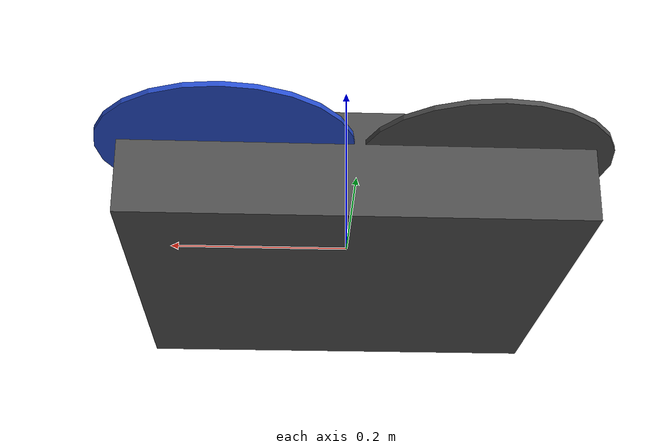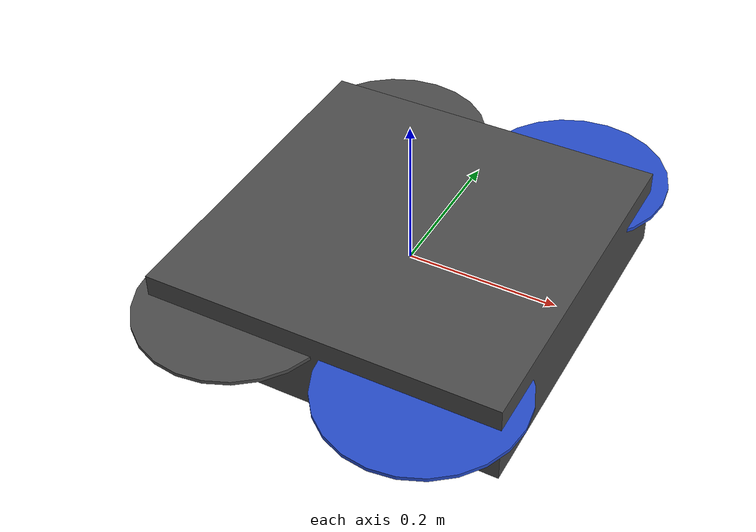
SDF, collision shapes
<?xml version='1.0'?>
<sdf version='1.5'>
  <model name='sensored_iris'>

    <include>
      <uri>model://iris</uri>
    </include>

    <include>
      <uri>model://os0_64</uri>
      <pose>0.0 0.0 0.1 0 0 0</pose>
    </include>
    <joint name="lidar_joint" type="fixed">
      <child>os0_64::os_link</child>
      <parent>iris::base_link</parent>
      <axis>
        <xyz>0 0 1</xyz>
      </axis>
    </joint>

    <include>
      <uri>model://d435i</uri>
      <pose>0.1 0.0 0.0 0 0 0</pose>
    </include>
    <joint name="cam_joint" type="fixed">
      <child>d435i::camera_link</child>
      <parent>iris::base_link</parent>
      <axis>
        <xyz>0 0 1</xyz>
      </axis>
    </joint>

  </model>
</sdf>

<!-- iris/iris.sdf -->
<sdf version='1.6'>
  <model name='iris'>
    <link name='base_link'>
      <pose frame=''>0 0 0 0 -0 0</pose>
      <inertial>
        <pose frame=''>0 0 0 0 -0 0</pose>
        <mass>1.5</mass>
        <inertia>
          <ixx>0.0347563</ixx>
          <ixy>0</ixy>
          <ixz>0</ixz>
          <iyy>0.0458929</iyy>
          <iyz>0</iyz>
          <izz>0.0977</izz>
        </inertia>
      </inertial>
      <collision name='base_link_inertia_collision'>
        <pose frame=''>0 0 0 0 -0 0</pose>
        <geometry>
          <box>
            <size>0.47 0.47 0.11</size>
          </box>
        </geometry>
        <surface>
          <contact>
            <ode>
              <min_depth>0.001</min_depth>
              <max_vel>0</max_vel>
            </ode>
          </contact>
          <friction>
            <ode/>
          </friction>
        </surface>
      </collision>
      <visual name='base_link_inertia_visual'>
        <pose frame=''>0 0 0 0 -0 0</pose>
        <geometry>
          <mesh>
            <scale>1 1 1</scale>
            <uri>model://rotors_description/meshes/iris.stl</uri>
          </mesh>
        </geometry>
        <material>
          <script>
            <name>Gazebo/DarkGrey</name>
            <uri>file://media/materials/scripts/gazebo.material</uri>
          </script>
        </material>
      </visual>
      <gravity>1</gravity>
      <velocity_decay/>
    </link>
    <link name='/imu_link'>
      <pose frame=''>0 0 0 0 -0 0</pose>
      <inertial>
        <pose frame=''>0 0 0 0 -0 0</pose>
        <mass>0.015</mass>
        <inertia>
          <ixx>1e-05</ixx>
          <ixy>0</ixy>
          <ixz>0</ixz>
          <iyy>1e-05</iyy>
          <iyz>0</iyz>
          <izz>1e-05</izz>
        </inertia>
      </inertial>
    </link>
    <joint name='/imu_joint' type='revolute'>
      <child>/imu_link</child>
      <parent>base_link</parent>
      <axis>
        <xyz>1 0 0</xyz>
        <limit>
          <lower>0</lower>
          <upper>0</upper>
          <effort>0</effort>
          <velocity>0</velocity>
        </limit>
        <dynamics>
          <spring_reference>0</spring_reference>
          <spring_stiffness>0</spring_stiffness>
        </dynamics>
        <use_parent_model_frame>0</use_parent_model_frame>
      </axis>
    </joint>
    <link name='rotor_0'>
      <pose frame=''>0.13 -0.22 0.023 0 -0 0</pose>
      <inertial>
        <pose frame=''>0 0 0 0 -0 0</pose>
        <mass>0.005</mass>
        <inertia>
          <ixx>9.75e-07</ixx>
          <ixy>0</ixy>
          <ixz>0</ixz>
          <iyy>0.000273104</iyy>
          <iyz>0</iyz>
          <izz>0.000274004</izz>
        </inertia>
      </inertial>
      <collision name='rotor_0_collision'>
        <pose frame=''>0 0 0 0 -0 0</pose>
        <geometry>
          <cylinder>
            <length>0.005</length>
            <radius>0.128</radius>
          </cylinder>
        </geometry>
        <surface>
          <contact>
            <ode/>
          </contact>
          <friction>
            <ode/>
          </friction>
        </surface>
      </collision>
      <visual name='rotor_0_visual'>
        <pose frame=''>0 0 0 0 -0 0</pose>
        <geometry>
          <mesh>
            <scale>1 1 1</scale>
            <uri>model://rotors_description/meshes/iris_prop_ccw.dae</uri>
          </mesh>
        </geometry>
        <material>
          <script>
            <name>Gazebo/Blue</name>
            <uri>file://media/materials/scripts/gazebo.material</uri>
          </script>
        </material>
      </visual>
      <gravity>1</gravity>
      <velocity_decay/>
    </link>
    <joint name='rotor_0_joint' type='revolute'>
      <child>rotor_0</child>
      <parent>base_link</parent>
      <axis>
        <xyz>0 0 1</xyz>
        <limit>
          <lower>-1e+16</lower>
          <upper>1e+16</upper>
        </limit>
        <dynamics>
          <spring_reference>0</spring_reference>
          <spring_stiffness>0</spring_stiffness>
        </dynamics>
        <use_parent_model_frame>0</use_parent_model_frame>
      </axis>
    </joint>
    <link name='rotor_1'>
      <pose frame=''>-0.13 0.2 0.023 0 -0 0</pose>
      <inertial>
        <pose frame=''>0 0 0 0 -0 0</pose>
        <mass>0.005</mass>
        <inertia>
          <ixx>9.75e-07</ixx>
          <ixy>0</ixy>
          <ixz>0</ixz>
          <iyy>0.000273104</iyy>
          <iyz>0</iyz>
          <izz>0.000274004</izz>
        </inertia>
      </inertial>
      <collision name='rotor_1_collision'>
        <pose frame=''>0 0 0 0 -0 0</pose>
        <geometry>
          <cylinder>
            <length>0.005</length>
            <radius>0.128</radius>
          </cylinder>
        </geometry>
        <surface>
          <contact>
            <ode/>
          </contact>
          <friction>
            <ode/>
          </friction>
        </surface>
      </collision>
      <visual name='rotor_1_visual'>
        <pose frame=''>0 0 0 0 -0 0</pose>
        <geometry>
          <mesh>
            <scale>1 1 1</scale>
            <uri>model://rotors_description/meshes/iris_prop_ccw.dae</uri>
          </mesh>
        </geometry>
        <material>
          <script>
            <name>Gazebo/DarkGrey</name>
            <uri>file://media/materials/scripts/gazebo.material</uri>
          </script>
        </material>
      </visual>
      <gravity>1</gravity>
      <velocity_decay/>
    </link>
    <joint name='rotor_1_joint' type='revolute'>
      <child>rotor_1</child>
      <parent>base_link</parent>
      <axis>
        <xyz>0 0 1</xyz>
        <limit>
          <lower>-1e+16</lower>
          <upper>1e+16</upper>
        </limit>
        <dynamics>
          <spring_reference>0</spring_reference>
          <spring_stiffness>0</spring_stiffness>
        </dynamics>
        <use_parent_model_frame>0</use_parent_model_frame>
      </axis>
    </joint>
    <link name='rotor_2'>
      <pose frame=''>0.13 0.22 0.023 0 -0 0</pose>
      <inertial>
        <pose frame=''>0 0 0 0 -0 0</pose>
        <mass>0.005</mass>
        <inertia>
          <ixx>9.75e-07</ixx>
          <ixy>0</ixy>
          <ixz>0</ixz>
          <iyy>0.000273104</iyy>
          <iyz>0</iyz>
          <izz>0.000274004</izz>
        </inertia>
      </inertial>
      <collision name='rotor_2_collision'>
        <pose frame=''>0 0 0 0 -0 0</pose>
        <geometry>
          <cylinder>
            <length>0.005</length>
            <radius>0.128</radius>
          </cylinder>
        </geometry>
        <surface>
          <contact>
            <ode/>
          </contact>
          <friction>
            <ode/>
          </friction>
        </surface>
      </collision>
      <visual name='rotor_2_visual'>
        <pose frame=''>0 0 0 0 -0 0</pose>
        <geometry>
          <mesh>
            <scale>1 1 1</scale>
            <uri>model://rotors_description/meshes/iris_prop_cw.dae</uri>
          </mesh>
        </geometry>
        <material>
          <script>
            <name>Gazebo/Blue</name>
            <uri>file://media/materials/scripts/gazebo.material</uri>
          </script>
        </material>
      </visual>
      <gravity>1</gravity>
      <velocity_decay/>
    </link>
    <joint name='rotor_2_joint' type='revolute'>
      <child>rotor_2</child>
      <parent>base_link</parent>
      <axis>
        <xyz>0 0 1</xyz>
        <limit>
          <lower>-1e+16</lower>
          <upper>1e+16</upper>
        </limit>
        <dynamics>
          <spring_reference>0</spring_reference>
          <spring_stiffness>0</spring_stiffness>
        </dynamics>
        <use_parent_model_frame>0</use_parent_model_frame>
      </axis>
    </joint>
    <link name='rotor_3'>
      <pose frame=''>-0.13 -0.2 0.023 0 -0 0</pose>
      <inertial>
        <pose frame=''>0 0 0 0 -0 0</pose>
        <mass>0.005</mass>
        <inertia>
          <ixx>9.75e-07</ixx>
          <ixy>0</ixy>
          <ixz>0</ixz>
          <iyy>0.000273104</iyy>
          <iyz>0</iyz>
          <izz>0.000274004</izz>
        </inertia>
      </inertial>
      <collision name='rotor_3_collision'>
        <pose frame=''>0 0 0 0 -0 0</pose>
        <geometry>
          <cylinder>
            <length>0.005</length>
            <radius>0.128</radius>
          </cylinder>
        </geometry>
        <surface>
          <contact>
            <ode/>
          </contact>
          <friction>
            <ode/>
          </friction>
        </surface>
      </collision>
      <visual name='rotor_3_visual'>
        <pose frame=''>0 0 0 0 -0 0</pose>
        <geometry>
          <mesh>
            <scale>1 1 1</scale>
            <uri>model://rotors_description/meshes/iris_prop_cw.dae</uri>
          </mesh>
        </geometry>
        <material>
          <script>
            <name>Gazebo/DarkGrey</name>
            <uri>file://media/materials/scripts/gazebo.material</uri>
          </script>
        </material>
      </visual>
      <gravity>1</gravity>
      <velocity_decay/>
    </link>
    <joint name='rotor_3_joint' type='revolute'>
      <child>rotor_3</child>
      <parent>base_link</parent>
      <axis>
        <xyz>0 0 1</xyz>
        <limit>
          <lower>-1e+16</lower>
          <upper>1e+16</upper>
        </limit>
        <dynamics>
          <spring_reference>0</spring_reference>
          <spring_stiffness>0</spring_stiffness>
        </dynamics>
        <use_parent_model_frame>0</use_parent_model_frame>
      </axis>
    </joint>
    <plugin name='rosbag' filename='librotors_gazebo_multirotor_base_plugin.so'>
      <robotNamespace/>
      <linkName>base_link</linkName>
      <rotorVelocitySlowdownSim>10</rotorVelocitySlowdownSim>
    </plugin>
    <plugin name='front_right_motor_model' filename='librotors_gazebo_motor_model.so'>
      <robotNamespace/>
      <jointName>rotor_0_joint</jointName>
      <linkName>rotor_0</linkName>
      <turningDirection>ccw</turningDirection>
      <timeConstantUp>0.0125</timeConstantUp>
      <timeConstantDown>0.025</timeConstantDown>
      <maxRotVelocity>1100</maxRotVelocity>
      <motorConstant>8.54858e-06</motorConstant>
      <momentConstant>0.06</momentConstant>
      <commandSubTopic>/gazebo/command/motor_speed</commandSubTopic>
      <motorNumber>0</motorNumber>
      <rotorDragCoefficient>0.000806428</rotorDragCoefficient>
      <rollingMomentCoefficient>1e-06</rollingMomentCoefficient>
      <motorSpeedPubTopic>/motor_speed/0</motorSpeedPubTopic>
      <rotorVelocitySlowdownSim>10</rotorVelocitySlowdownSim>
    </plugin>
    <plugin name='back_left_motor_model' filename='librotors_gazebo_motor_model.so'>
      <robotNamespace/>
      <jointName>rotor_1_joint</jointName>
      <linkName>rotor_1</linkName>
      <turningDirection>ccw</turningDirection>
      <timeConstantUp>0.0125</timeConstantUp>
      <timeConstantDown>0.025</timeConstantDown>
      <maxRotVelocity>1100</maxRotVelocity>
      <motorConstant>8.54858e-06</motorConstant>
      <momentConstant>0.06</momentConstant>
      <commandSubTopic>/gazebo/command/motor_speed</commandSubTopic>
      <motorNumber>1</motorNumber>
      <rotorDragCoefficient>0.000806428</rotorDragCoefficient>
      <rollingMomentCoefficient>1e-06</rollingMomentCoefficient>
      <motorSpeedPubTopic>/motor_speed/1</motorSpeedPubTopic>
      <rotorVelocitySlowdownSim>10</rotorVelocitySlowdownSim>
    </plugin>
    <plugin name='front_left_motor_model' filename='librotors_gazebo_motor_model.so'>
      <robotNamespace/>
      <jointName>rotor_2_joint</jointName>
      <linkName>rotor_2</linkName>
      <turningDirection>cw</turningDirection>
      <timeConstantUp>0.0125</timeConstantUp>
      <timeConstantDown>0.025</timeConstantDown>
      <maxRotVelocity>1100</maxRotVelocity>
      <motorConstant>8.54858e-06</motorConstant>
      <momentConstant>0.06</momentConstant>
      <commandSubTopic>/gazebo/command/motor_speed</commandSubTopic>
      <motorNumber>2</motorNumber>
      <rotorDragCoefficient>0.000806428</rotorDragCoefficient>
      <rollingMomentCoefficient>1e-06</rollingMomentCoefficient>
      <motorSpeedPubTopic>/motor_speed/2</motorSpeedPubTopic>
      <rotorVelocitySlowdownSim>10</rotorVelocitySlowdownSim>
    </plugin>
    <plugin name='back_right_motor_model' filename='librotors_gazebo_motor_model.so'>
      <robotNamespace/>
      <jointName>rotor_3_joint</jointName>
      <linkName>rotor_3</linkName>
      <turningDirection>cw</turningDirection>
      <timeConstantUp>0.0125</timeConstantUp>
      <timeConstantDown>0.025</timeConstantDown>
      <maxRotVelocity>1100</maxRotVelocity>
      <motorConstant>8.54858e-06</motorConstant>
      <momentConstant>0.06</momentConstant>
      <commandSubTopic>/gazebo/command/motor_speed</commandSubTopic>
      <motorNumber>3</motorNumber>
      <rotorDragCoefficient>0.000806428</rotorDragCoefficient>
      <rollingMomentCoefficient>1e-06</rollingMomentCoefficient>
      <motorSpeedPubTopic>/motor_speed/3</motorSpeedPubTopic>
      <rotorVelocitySlowdownSim>10</rotorVelocitySlowdownSim>
    </plugin>
    <plugin name='mavlink_interface' filename='librotors_gazebo_mavlink_interface.so'>
      <robotNamespace/>
      <imuSubTopic>/imu</imuSubTopic>
      <mavlink_addr>INADDR_ANY</mavlink_addr>
      <mavlink_udp_port>14560</mavlink_udp_port>
      <motorSpeedCommandPubTopic>/gazebo/command/motor_speed</motorSpeedCommandPubTopic>
      <control_channels>
        <channel name='rotor1'>
          <input_index>0</input_index>
          <input_offset>0</input_offset>
          <input_scaling>1000</input_scaling>
          <zero_position_disarmed>0</zero_position_disarmed>
          <zero_position_armed>100</zero_position_armed>
          <joint_control_type>velocity</joint_control_type>
        </channel>
        <channel name='rotor2'>
          <input_index>1</input_index>
          <input_offset>0</input_offset>
          <input_scaling>1000</input_scaling>
          <zero_position_disarmed>0</zero_position_disarmed>
          <zero_position_armed>100</zero_position_armed>
          <joint_control_type>velocity</joint_control_type>
        </channel>
        <channel name='rotor3'>
          <input_index>2</input_index>
          <input_offset>0</input_offset>
          <input_scaling>1000</input_scaling>
          <zero_position_disarmed>0</zero_position_disarmed>
          <zero_position_armed>100</zero_position_armed>
          <joint_control_type>velocity</joint_control_type>
        </channel>
        <channel name='rotor4'>
          <input_index>3</input_index>
          <input_offset>0</input_offset>
          <input_scaling>1000</input_scaling>
          <zero_position_disarmed>0</zero_position_disarmed>
          <zero_position_armed>100</zero_position_armed>
          <joint_control_type>velocity</joint_control_type>
        </channel>
        <channel name='rotor5'>
          <input_index>4</input_index>
          <input_offset>1</input_offset>
          <input_scaling>324.6</input_scaling>
          <zero_position_disarmed>0</zero_position_disarmed>
          <zero_position_armed>0</zero_position_armed>
          <joint_control_type>velocity</joint_control_type>
          <joint_control_pid>
            <p>0.1</p>
            <i>0</i>
            <d>0</d>
            <iMax>0.0</iMax>
            <iMin>0.0</iMin>
            <cmdMax>2</cmdMax>
            <cmdMin>-2</cmdMin>
          </joint_control_pid>
          <joint_name>zephyr_delta_wing::propeller_joint</joint_name>
        </channel>
        <channel name='rotor6'>
          <input_index>5</input_index>
          <input_offset>0</input_offset>
          <input_scaling>0.524</input_scaling>
          <zero_position_disarmed>0</zero_position_disarmed>
          <zero_position_armed>0</zero_position_armed>
          <joint_control_type>position</joint_control_type>
          <joint_name>zephyr_delta_wing::flap_left_joint</joint_name>
          <joint_control_pid>
            <p>10.0</p>
            <i>0</i>
            <d>0</d>
            <iMax>0</iMax>
            <iMin>0</iMin>
            <cmdMax>20</cmdMax>
            <cmdMin>-20</cmdMin>
          </joint_control_pid>
        </channel>
        <channel name='rotor7'>
          <input_index>6</input_index>
          <input_offset>0</input_offset>
          <input_scaling>0.524</input_scaling>
          <zero_position_disarmed>0</zero_position_disarmed>
          <zero_position_armed>0</zero_position_armed>
          <joint_control_type>position</joint_control_type>
          <joint_name>zephyr_delta_wing::flap_right_joint</joint_name>
          <joint_control_pid>
            <p>10.0</p>
            <i>0</i>
            <d>0</d>
            <iMax>0</iMax>
            <iMin>0</iMin>
            <cmdMax>20</cmdMax>
            <cmdMin>-20</cmdMin>
          </joint_control_pid>
        </channel>
        <channel name='rotor8'>
          <input_index>7</input_index>
          <input_offset>0</input_offset>
          <input_scaling>0.524</input_scaling>
          <zero_position_disarmed>0</zero_position_disarmed>
          <zero_position_armed>0</zero_position_armed>
          <joint_control_type>position</joint_control_type>
        </channel>
      </control_channels>
    </plugin>
    <static>0</static>
    <plugin name='rotors_gazebo_imu_plugin' filename='librotors_gazebo_imu_plugin.so'>
      <robotNamespace/>
      <linkName>/imu_link</linkName>
      <imuTopic>/imu</imuTopic>
      <gyroscopeNoiseDensity>0.0003394</gyroscopeNoiseDensity>
      <gyroscopeRandomWalk>3.8785e-05</gyroscopeRandomWalk>
      <gyroscopeBiasCorrelationTime>1000.0</gyroscopeBiasCorrelationTime>
      <gyroscopeTurnOnBiasSigma>0.0087</gyroscopeTurnOnBiasSigma>
      <accelerometerNoiseDensity>0.004</accelerometerNoiseDensity>
      <accelerometerRandomWalk>0.006</accelerometerRandomWalk>
      <accelerometerBiasCorrelationTime>300.0</accelerometerBiasCorrelationTime>
      <accelerometerTurnOnBiasSigma>0.196</accelerometerTurnOnBiasSigma>
    </plugin>
  </model>
</sdf>

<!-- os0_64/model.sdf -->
<sdf version="1.5">
  <model name="os0_64">
    <pose>0 0 0 0 0 0</pose>
    <link name="os_link">
      <inertial>
        <mass>0.1</mass>
          <inertia>
            <ixx>0.0000241148</ixx>
            <ixy>0</ixy>
            <ixz>0</ixz>
            <iyy>0.0000241148</iyy>
            <iyz>0</iyz>
            <izz>0.0000264</izz>
          </inertia>
      </inertial>
      <collision name="collision">
        <geometry>
          <box>
            <size>0.001 0.001 0.001</size>
          </box>
        </geometry>
      </collision>
      <visual name="visual">
        <cast_shadows>false</cast_shadows>
        <geometry>
          <mesh>
            <uri>model://os0_64/os1_64.dae</uri>
            <scale>1.0 1.0 1.0</scale>
          </mesh>
        </geometry>
      </visual>

      <sensor name="laser" type="ray">
        <ray>
          <scan>
            <horizontal>
              <samples>2048</samples>
              <resolution>1</resolution>
              <min_angle>-3.141592653589</min_angle>
              <max_angle>3.141592653589</max_angle>
            </horizontal>
            <vertical>
              <samples>64</samples>
              <resolution>1</resolution>
              <min_angle>-0.7854</min_angle>
              <max_angle>0.7854</max_angle>
            </vertical>
          </scan>
          <range>
            <min>0.7</min>
            <max>50.0</max>
            <resolution>0.03</resolution>
          </range>
        </ray>
        <plugin name="gazebo_ros_laser_controller" filename="libgazebo_ros_ouster_laser.so">
          <topicName>/ouster/points</topicName>
          <frameName>os_lidar</frameName>
          <min_range>0.7</min_range>
          <max_range>50.0</max_range>
          <gaussianNoise>0.008</gaussianNoise>
          <update_rate>10.0</update_rate>
        </plugin>
        <visualize>false</visualize>
        <always_on>1</always_on>
        <update_rate>10.0</update_rate>
      </sensor>
    </link>

    <link name="os_imu_link">
      <inertial>
        <mass>0.01</mass>
          <inertia>
            <ixx>0.000000241148</ixx>
            <ixy>0</ixy>
            <ixz>0</ixz>
            <iyy>0.000000241148</iyy>
            <iyz>0</iyz>
            <izz>0.000000241148</izz>
          </inertia>
      </inertial>
    </link>

    <joint name="os_imu_link_joint" type="fixed">
      <parent>os_link</parent>
      <child>os_imu_link</child>
      <pose>0.006253 -0.011775 0.007645 0 0 0</pose>
      <axis>
        <xyz>0 0 1</xyz>
      </axis>
    </joint>

    <plugin name="imu_controller" filename="libhector_gazebo_ros_imu.so">
      <robotNamespace>/</robotNamespace>
      <updateRate>100.0</updateRate>
      <bodyName>os_imu_link</bodyName>
      <topicName>/ouster/imu</topicName>
      <accelDrift>0.005 0.005 0.005</accelDrift>
      <accelGaussianNoise>0.005 0.005 0.005</accelGaussianNoise>
      <rateDrift>0.005 0.005 0.005 </rateDrift>
      <rateGaussianNoise>0.005 0.005 0.005 </rateGaussianNoise>
      <headingDrift>0.005</headingDrift>
      <headingGaussianNoise>0.005</headingGaussianNoise>
    </plugin>

  </model>
</sdf>

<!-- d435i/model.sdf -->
<sdf version="1.5">
  <model name="d435i">
    <pose>0 0 0 0 0 0</pose>
    <link name="camera_link">
      <inertial>
        <mass>0.072</mass>
          <inertia>
            <ixx>4.6928e-5</ixx>
            <ixy>4.8e-10</ixy>
            <ixz>1.89e-9</ixz>
            <iyy>6.641e-6</iyy>
            <iyz>1.5406e-7</iyz>
            <izz>4.6498e-5</izz>
          </inertia>
      </inertial>
      <collision name="collision">
        <geometry>
          <box>
            <size>0.001 0.001 0.001</size>
          </box>
        </geometry>
      </collision>
      <visual name="visual">
        <cast_shadows>false</cast_shadows>
        <geometry>
          <mesh>
            <uri>model://d435i/d435i.dae</uri>
            <scale>1.0 1.0 1.0</scale>
          </mesh>
        </geometry>
      </visual>

      <sensor name="camera" type="depth">
        <camera name="depth">
          <horizontal_fov>1.5708</horizontal_fov>
          <image>
            <width>640</width>
            <height>480</height>
            <format>R8G8B8</format>
          </image>
          <clip>
            <near>0.1</near>
            <far>300</far>
          </clip>
          <noise>
            <type>gaussian</type>
            <mean>0.0</mean>
            <stddev>0.0001</stddev>
          </noise>
        </camera>
        <always_on>1</always_on>
        <visualize>1</visualize>
        <update_rate>15</update_rate>
        <plugin name="camera_plugin" filename="libgazebo_ros_openni_kinect.so">
          <baseline>0.05</baseline>
          <alwaysOn>true</alwaysOn>
          <robotNamespace>/d435i</robotNamespace>
          <updateRate>0.0</updateRate>
          <cameraName>depth</cameraName>
          <imageTopicName>rgb_image_raw</imageTopicName>
          <cameraInfoTopicName>rgb_camera_info</cameraInfoTopicName>
          <depthImageTopicName>image_raw</depthImageTopicName>
          <depthImageCameraInfoTopicName>camera_info</depthImageCameraInfoTopicName>
          <pointCloudTopicName>pointcloud</pointCloudTopicName>
          <frameName>depth_camera_link</frameName>
          <pointCloudCutoff>0.11</pointCloudCutoff>
          <pointCloudCutoffMax>7.0</pointCloudCutoffMax>
          <distortionK1>0</distortionK1>
          <distortionK2>0</distortionK2>
          <distortionK3>0</distortionK3>
          <distortionT1>0</distortionT1>
          <distortionT2>0</distortionT2>
          <hackBaseline>0.05</hackBaseline>
        </plugin>
      </sensor>

      <sensor type="multicamera" name="stereo_camera">
        <camera name="left">
          <pose>0 0 0 0 0 0</pose>
          <horizontal_fov>1.5708</horizontal_fov>
          <image>
            <width>640</width>
            <height>480</height>
            <format>R8G8B8</format>
          </image>
          <clip>
            <near>0.05</near>
            <far>1500</far>
          </clip>
          <noise>
            <type>gaussian</type>
            <mean>0.0</mean>
            <stddev>0.0</stddev>
          </noise>
        </camera>
        <camera name="right">
          <pose>0 -0.05 0 0 0 0</pose>
          <horizontal_fov>1.5708</horizontal_fov>
          <image>
            <width>640</width>
            <height>480</height>
            <format>R8G8B8</format>
          </image>
          <clip>
            <near>0.05</near>
            <far>1500</far>
          </clip>
          <noise>
            <type>gaussian</type>
            <mean>0.0</mean>
            <stddev>0.0</stddev>
          </noise>
        </camera>
        <always_on>1</always_on>
        <visualize>1</visualize>
        <update_rate>15.0</update_rate>
        <plugin name="stereo_camera_controller" filename="libgazebo_ros_multicamera.so">
          <alwaysOn>true</alwaysOn>
          <updateRate>0.0</updateRate>
          <robotNamespace>/d435i</robotNamespace>
          <cameraName>stereo_ir</cameraName>
          <imageTopicName>image_raw</imageTopicName>
          <cameraInfoTopicName>camera_info</cameraInfoTopicName>
          <frameName>stereo_camera_link</frameName>
          <CxPrime>0.0</CxPrime>
          <Cx>0.0</Cx>
          <Cy>0.0</Cy>
          <focalLength>0.0</focalLength>
          <distortionK1>0.0</distortionK1>
          <distortionK2>0.0</distortionK2>
          <distortionK3>0.0</distortionK3>
          <distortionT1>0.0</distortionT1>
          <distortionT2>0.0</distortionT2>
          <hackBaseline>0.05</hackBaseline>
        </plugin>
      </sensor>

    </link>
  </model>
</sdf>
